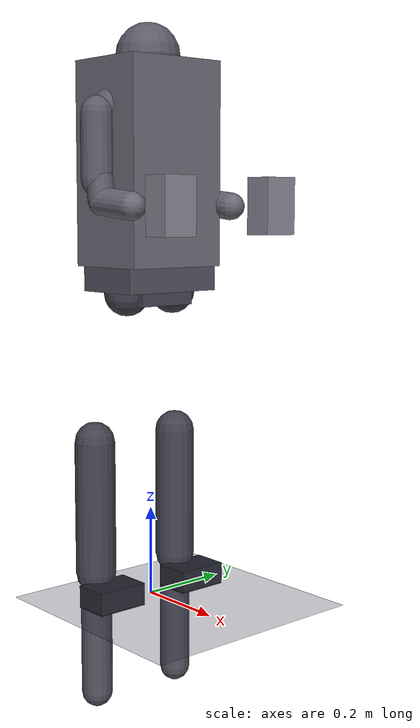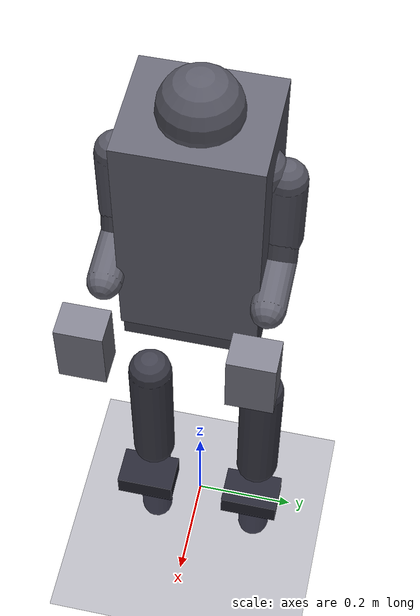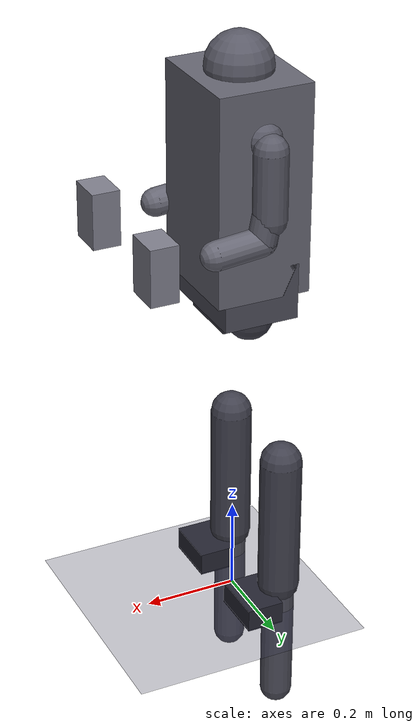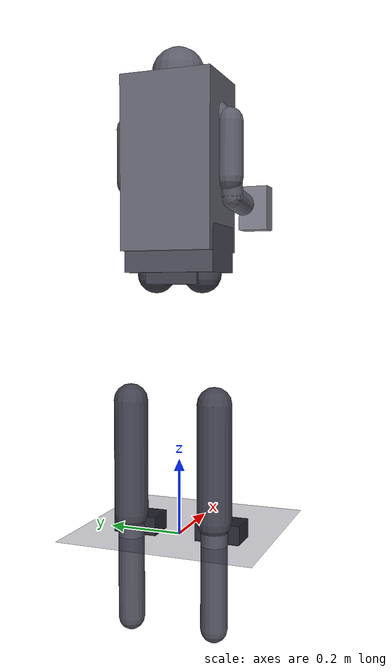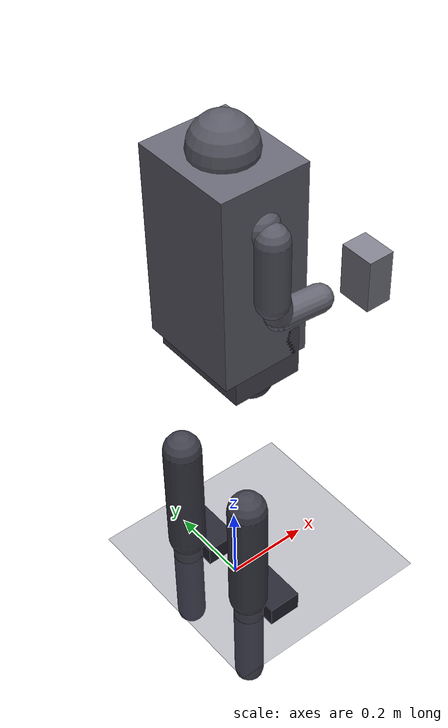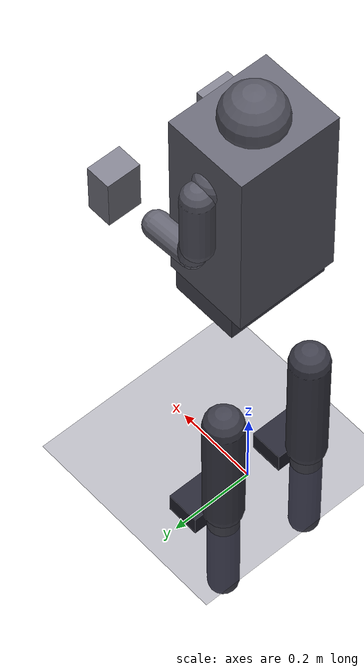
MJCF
<mujoco model="g1_simplified">
  <compiler angle="radian"/>

  <statistic center="0 0 0.8" extent="2"/>

  <visual>
    <headlight ambient="0.6 0.6 0.6" diffuse="0.8 0.8 0.8" specular="0.2 0.2 0.2"/>
    <global offwidth="640" offheight="480"/>
  </visual>

  <asset>
    <texture type="skybox" builtin="gradient" rgb1="0.3 0.5 0.7" rgb2="0.05 0.05 0.1" width="512" height="512"/>
    <texture type="2d" name="ground" builtin="checker" mark="edge" rgb1="0.25 0.25 0.35" rgb2="0.15 0.15 0.25" markrgb="0.5 0.5 0.5" width="300" height="300"/>
    <material name="ground" texture="ground" texuniform="true" texrepeat="3 3" reflectance="0.1"/>
  </asset>

  <default>
    <default class="leg_motor">
      <joint damping="0.05" armature="0.01" frictionloss="0.2"/>
    </default>
    <default class="ankle_motor">
      <joint damping="0.05" armature="0.01" frictionloss="0.2"/>
    </default>
    <default class="torso_motor">
      <joint damping="0.05" armature="0.01" frictionloss="0.2"/>
    </default>
    <default class="arm_motor">
      <joint damping="0.05" armature="0.01" frictionloss="0.2"/>
    </default>
    <default class="wrist_motor">
      <joint damping="0.05" armature="0.01" frictionloss="0.1"/>
    </default>
  </default>

  <worldbody>
    <!-- Scene: light, cameras, floor -->
    <light name="key" pos="4 4 4" dir="-4 -4 -4" diffuse="1.0 1.0 1.0" specular="0.5 0.5 0.5"/>
    <camera name="front" pos="2 0 1.2" xyaxes="0 1 0 0 0 1"/>
    <camera name="side" pos="0 -2 1.2" xyaxes="1 0 0 0 0 1"/>
    <camera name="diag" pos="1.5 -1.5 1.5" xyaxes="0.707 -0.707 0 -0.354 0.354 0.866"/>
    <geom name="floor" size="0 0 0.05" type="plane" material="ground"/>

    <!-- ===== PELVIS (floating base) ===== -->
    <body name="pelvis" pos="0 0 0.793">
      <inertial pos="0 0 -0.076" mass="3.8" diaginertia="0.01 0.009 0.008"/>
      <joint name="floating_base_joint" type="free"/>

      <geom type="box" size="0.08 0.12 0.06" pos="0 0 -0.04" rgba="0.3 0.3 0.35 1"/>
      <geom type="box" size="0.06 0.07 0.04" pos="0 0 -0.09" rgba="0.25 0.25 0.3 1"/>

      <!-- LEFT LEG -->
      <body name="left_hip_pitch_link" pos="0 0.064 -0.103">
        <inertial pos="0 0.04 -0.02" mass="1.35" diaginertia="0.0018 0.0015 0.0012"/>
        <joint name="left_hip_pitch_joint" axis="0 1 0" range="-2.53 2.88" class="leg_motor"/>
        <geom type="sphere" size="0.05" rgba="0.25 0.25 0.3 1"/>

        <body name="left_hip_roll_link" pos="0 0.052 -0.030">
          <inertial pos="0.03 0 -0.09" mass="1.52" diaginertia="0.0025 0.0024 0.0015"/>
          <joint name="left_hip_roll_joint" axis="1 0 0" range="-0.52 2.97" class="leg_motor"/>

          <body name="left_hip_yaw_link" pos="0.025 0 -0.124">
            <inertial pos="-0.06 -0.01 -0.15" mass="1.7" diaginertia="0.0078 0.0072 0.0016"/>
            <joint name="left_hip_yaw_joint" axis="0 0 1" range="-2.76 2.76" class="leg_motor"/>

            <body name="left_knee_link" pos="-0.078 0 -0.177">
              <inertial pos="0 0 -0.15" mass="1.93" diaginertia="0.011 0.011 0.0015"/>
              <joint name="left_knee_joint" axis="0 1 0" range="-0.087 2.88" class="leg_motor"/>
              <geom type="capsule" size="0.045" fromto="0 0 0 0 0 -0.30" rgba="0.25 0.25 0.3 1"/>

              <body name="left_ankle_pitch_link" pos="0 0 -0.300">
                <inertial pos="-0.007 0 0.011" mass="0.074" diaginertia="2e-5 1.4e-5 7e-6"/>
                <joint name="left_ankle_pitch_joint" axis="0 1 0" range="-0.87 0.52" class="ankle_motor"/>
                <geom type="capsule" size="0.035" fromto="0 0 0 0 0 -0.28" rgba="0.3 0.3 0.35 1"/>

                <body name="left_ankle_roll_link" pos="0 0 -0.018">
                  <inertial pos="0.03 0 -0.016" mass="0.61" diaginertia="0.0017 0.0016 0.0002"/>
                  <joint name="left_ankle_roll_joint" axis="1 0 0" range="-0.26 0.26" class="ankle_motor"/>
                  <geom type="box" size="0.04 0.06 0.025" pos="0.06 0 -0.02" rgba="0.15 0.15 0.2 1"/>
                </body>
              </body>
            </body>
          </body>
        </body>
      </body>

      <!-- RIGHT LEG -->
      <body name="right_hip_pitch_link" pos="0 -0.064 -0.103">
        <inertial pos="0 -0.04 -0.02" mass="1.35" diaginertia="0.0018 0.0015 0.0012"/>
        <joint name="right_hip_pitch_joint" axis="0 1 0" range="-2.53 2.88" class="leg_motor"/>
        <geom type="sphere" size="0.05" rgba="0.25 0.25 0.3 1"/>

        <body name="right_hip_roll_link" pos="0 -0.052 -0.030">
          <inertial pos="0.03 0 -0.09" mass="1.52" diaginertia="0.0025 0.0024 0.0015"/>
          <joint name="right_hip_roll_joint" axis="1 0 0" range="-2.97 0.52" class="leg_motor"/>

          <body name="right_hip_yaw_link" pos="0.025 0 -0.124">
            <inertial pos="-0.06 0.01 -0.15" mass="1.7" diaginertia="0.0078 0.0072 0.0016"/>
            <joint name="right_hip_yaw_joint" axis="0 0 1" range="-2.76 2.76" class="leg_motor"/>

            <body name="right_knee_link" pos="-0.078 0 -0.177">
              <inertial pos="0 0 -0.15" mass="1.93" diaginertia="0.011 0.011 0.0015"/>
              <joint name="right_knee_joint" axis="0 1 0" range="-0.087 2.88" class="leg_motor"/>
              <geom type="capsule" size="0.045" fromto="0 0 0 0 0 -0.30" rgba="0.25 0.25 0.3 1"/>

              <body name="right_ankle_pitch_link" pos="0 0 -0.300">
                <inertial pos="-0.007 0 0.011" mass="0.074" diaginertia="2e-5 1.4e-5 7e-6"/>
                <joint name="right_ankle_pitch_joint" axis="0 1 0" range="-0.87 0.52" class="ankle_motor"/>
                <geom type="capsule" size="0.035" fromto="0 0 0 0 0 -0.28" rgba="0.3 0.3 0.35 1"/>

                <body name="right_ankle_roll_link" pos="0 0 -0.018">
                  <inertial pos="0.03 0 -0.016" mass="0.61" diaginertia="0.0017 0.0016 0.0002"/>
                  <joint name="right_ankle_roll_joint" axis="1 0 0" range="-0.26 0.26" class="ankle_motor"/>
                  <geom type="box" size="0.04 0.06 0.025" pos="0.06 0 -0.02" rgba="0.15 0.15 0.2 1"/>
                </body>
              </body>
            </body>
          </body>
        </body>
      </body>

      <!-- TORSO -->
      <body name="waist_yaw_link" pos="0 0 0">
        <inertial pos="0 0 0.02" mass="0.24" diaginertia="0.00016 0.00012 9.7e-5"/>
        <joint name="waist_yaw_joint" axis="0 0 1" range="-2.62 2.62" class="torso_motor"/>

        <body name="waist_roll_link" pos="-0.004 0 0.035">
          <inertial pos="0 0 0.01" mass="0.047" diaginertia="7.5e-6 6.4e-6 4e-6"/>
          <joint name="waist_roll_joint" axis="1 0 0" range="-0.52 0.52" class="torso_motor"/>

          <body name="torso_link" pos="0 0 0.019">
            <inertial pos="0 0 0.18" mass="9.6" diaginertia="0.124 0.112 0.033"/>
            <joint name="waist_pitch_joint" axis="0 1 0" range="-0.52 0.52" class="torso_motor"/>
            <geom type="box" size="0.10 0.12 0.22" pos="0 0 0.12" rgba="0.4 0.4 0.45 1"/>
            <geom type="sphere" size="0.07" pos="0 0 0.35" rgba="0.35 0.35 0.4 1"/>

            <!-- LEFT ARM -->
            <body name="left_shoulder_pitch_link" pos="0 0.100 0.238">
              <inertial pos="0 0.036 -0.012" mass="0.72" diaginertia="0.00047 0.00043 0.00041"/>
              <joint name="left_shoulder_pitch_joint" axis="0 1 0" range="-3.09 2.67" class="arm_motor"/>
              <geom type="sphere" size="0.04" rgba="0.35 0.35 0.4 1"/>

              <body name="left_shoulder_roll_link" pos="0 0.038 -0.014">
                <inertial pos="0 0 -0.06" mass="0.64" diaginertia="0.0007 0.0006 0.0004"/>
                <joint name="left_shoulder_roll_joint" axis="1 0 0" range="-1.59 2.25" class="arm_motor"/>
                <geom type="capsule" size="0.035" fromto="0 0 0 0 0 -0.14" rgba="0.35 0.35 0.4 1"/>

                <body name="left_shoulder_yaw_link" pos="0 0 -0.103">
                  <inertial pos="0.01 -0.003 -0.07" mass="0.73" diaginertia="0.0011 0.0010 0.0004"/>
                  <joint name="left_shoulder_yaw_joint" axis="0 0 1" range="-2.62 2.62" class="arm_motor"/>
                  <geom type="capsule" size="0.03" fromto="0 0 0 0.016 0 -0.08" rgba="0.35 0.35 0.4 1"/>

                  <body name="left_elbow_link" pos="0.016 0 -0.081">
                    <inertial pos="0.065 0 -0.01" mass="0.6" diaginertia="0.00044 0.00042 0.00026"/>
                    <joint name="left_elbow_joint" axis="0 1 0" range="-1.05 2.09" class="arm_motor"/>
                    <geom type="capsule" size="0.03" fromto="0 0 0 0.10 0 -0.01" rgba="0.4 0.4 0.45 1"/>

                    <body name="left_wrist_roll_link" pos="0.100 0 -0.01">
                      <inertial pos="0.017 0 0" mass="0.085" diaginertia="5.5e-5 5e-5 3.6e-5"/>
                      <joint name="left_wrist_roll_joint" axis="1 0 0" range="-1.97 1.97" class="arm_motor"/>
                      <geom type="sphere" size="0.025" rgba="0.45 0.45 0.5 1"/>

                      <body name="left_wrist_pitch_link" pos="0.038 0 0">
                        <inertial pos="0.023 0 0" mass="0.48" diaginertia="0.00043 0.00043 0.00016"/>
                        <joint name="left_wrist_pitch_joint" axis="0 1 0" range="-1.61 1.61" class="wrist_motor"/>

                        <body name="left_wrist_yaw_link" pos="0.046 0 0">
                          <inertial pos="0.07 0 0" mass="0.25" diaginertia="0.00065 0.00056 0.00015"/>
                          <joint name="left_wrist_yaw_joint" axis="0 0 1" range="-1.61 1.61" class="wrist_motor"/>
                          <geom type="box" size="0.03 0.04 0.06" pos="0.04 0 0" rgba="0.5 0.5 0.55 1"/>
                        </body>
                      </body>
                    </body>
                  </body>
                </body>
              </body>
            </body>

            <!-- RIGHT ARM -->
            <body name="right_shoulder_pitch_link" pos="0 -0.100 0.238">
              <inertial pos="0 -0.036 -0.012" mass="0.72" diaginertia="0.00047 0.00043 0.00041"/>
              <joint name="right_shoulder_pitch_joint" axis="0 1 0" range="-3.09 2.67" class="arm_motor"/>
              <geom type="sphere" size="0.04" rgba="0.35 0.35 0.4 1"/>

              <body name="right_shoulder_roll_link" pos="0 -0.038 -0.014">
                <inertial pos="0 0 -0.06" mass="0.64" diaginertia="0.0007 0.0006 0.0004"/>
                <joint name="right_shoulder_roll_joint" axis="1 0 0" range="-2.25 1.59" class="arm_motor"/>
                <geom type="capsule" size="0.035" fromto="0 0 0 0 0 -0.14" rgba="0.35 0.35 0.4 1"/>

                <body name="right_shoulder_yaw_link" pos="0 0 -0.103">
                  <inertial pos="0.01 0.003 -0.07" mass="0.73" diaginertia="0.0011 0.0010 0.0004"/>
                  <joint name="right_shoulder_yaw_joint" axis="0 0 1" range="-2.62 2.62" class="arm_motor"/>
                  <geom type="capsule" size="0.03" fromto="0 0 0 0.016 0 -0.08" rgba="0.35 0.35 0.4 1"/>

                  <body name="right_elbow_link" pos="0.016 0 -0.081">
                    <inertial pos="0.065 0 -0.01" mass="0.6" diaginertia="0.00044 0.00042 0.00026"/>
                    <joint name="right_elbow_joint" axis="0 1 0" range="-1.05 2.09" class="arm_motor"/>
                    <geom type="capsule" size="0.03" fromto="0 0 0 0.10 0 -0.01" rgba="0.4 0.4 0.45 1"/>

                    <body name="right_wrist_roll_link" pos="0.100 0 -0.01">
                      <inertial pos="0.017 0 0" mass="0.085" diaginertia="5.5e-5 5e-5 3.6e-5"/>
                      <joint name="right_wrist_roll_joint" axis="1 0 0" range="-1.97 1.97" class="arm_motor"/>
                      <geom type="sphere" size="0.025" rgba="0.45 0.45 0.5 1"/>

                      <body name="right_wrist_pitch_link" pos="0.038 0 0">
                        <inertial pos="0.023 0 0" mass="0.48" diaginertia="0.00043 0.00043 0.00016"/>
                        <joint name="right_wrist_pitch_joint" axis="0 1 0" range="-1.61 1.61" class="wrist_motor"/>

                        <body name="right_wrist_yaw_link" pos="0.046 0 0">
                          <inertial pos="0.07 0 0" mass="0.25" diaginertia="0.00065 0.00056 0.00015"/>
                          <joint name="right_wrist_yaw_joint" axis="0 0 1" range="-1.61 1.61" class="wrist_motor"/>
                          <geom type="box" size="0.03 0.04 0.06" pos="0.04 0 0" rgba="0.5 0.5 0.55 1"/>
                        </body>
                      </body>
                    </body>
                  </body>
                </body>
              </body>
            </body>
          </body>
        </body>
      </body>
    </body>
  </worldbody>

  <actuator>
    <motor name="left_hip_pitch" joint="left_hip_pitch_joint"/>
    <motor name="left_hip_roll" joint="left_hip_roll_joint"/>
    <motor name="left_hip_yaw" joint="left_hip_yaw_joint"/>
    <motor name="left_knee" joint="left_knee_joint"/>
    <motor name="left_ankle_pitch" joint="left_ankle_pitch_joint"/>
    <motor name="left_ankle_roll" joint="left_ankle_roll_joint"/>
    <motor name="right_hip_pitch" joint="right_hip_pitch_joint"/>
    <motor name="right_hip_roll" joint="right_hip_roll_joint"/>
    <motor name="right_hip_yaw" joint="right_hip_yaw_joint"/>
    <motor name="right_knee" joint="right_knee_joint"/>
    <motor name="right_ankle_pitch" joint="right_ankle_pitch_joint"/>
    <motor name="right_ankle_roll" joint="right_ankle_roll_joint"/>
    <motor name="waist_yaw" joint="waist_yaw_joint"/>
    <motor name="waist_roll" joint="waist_roll_joint"/>
    <motor name="waist_pitch" joint="waist_pitch_joint"/>
    <motor name="left_shoulder_pitch" joint="left_shoulder_pitch_joint"/>
    <motor name="left_shoulder_roll" joint="left_shoulder_roll_joint"/>
    <motor name="left_shoulder_yaw" joint="left_shoulder_yaw_joint"/>
    <motor name="left_elbow" joint="left_elbow_joint"/>
    <motor name="left_wrist_roll" joint="left_wrist_roll_joint"/>
    <motor name="left_wrist_pitch" joint="left_wrist_pitch_joint"/>
    <motor name="left_wrist_yaw" joint="left_wrist_yaw_joint"/>
    <motor name="right_shoulder_pitch" joint="right_shoulder_pitch_joint"/>
    <motor name="right_shoulder_roll" joint="right_shoulder_roll_joint"/>
    <motor name="right_shoulder_yaw" joint="right_shoulder_yaw_joint"/>
    <motor name="right_elbow" joint="right_elbow_joint"/>
    <motor name="right_wrist_roll" joint="right_wrist_roll_joint"/>
    <motor name="right_wrist_pitch" joint="right_wrist_pitch_joint"/>
    <motor name="right_wrist_yaw" joint="right_wrist_yaw_joint"/>
  </actuator>
</mujoco>
